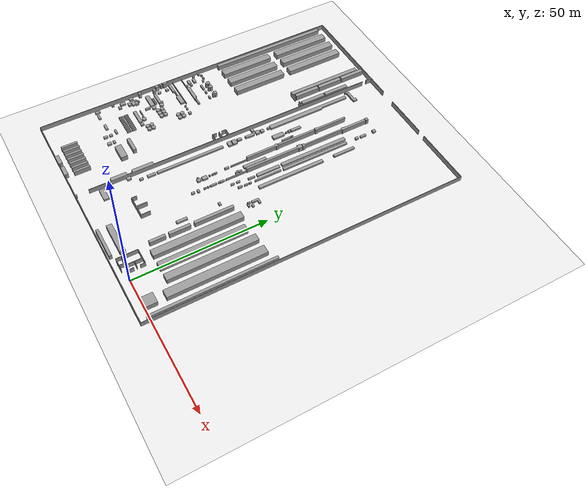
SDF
<sdf version="1.6">
 <world name="default">
  <light name="sun" type="directional">
   <pose>0 0 10 0 -0 0</pose>
   <diffuse>0.7 0.7 0.7 1</diffuse>
   <specular>0.2 0.2 0.2 1</specular>
   <attenuation>
    <range>1000</range>
    <constant>0.9</constant>
    <linear>0.01</linear>
    <quadratic>0.001</quadratic>
   </attenuation>
   <direction>-0.5 0.1 -0.9</direction>
  </light>
  <spherical_coordinates>
   <surface_model>EARTH_WGS84</surface_model>
   <latitude_deg>39.551549</latitude_deg>
   <longitude_deg>-0.468086</longitude_deg>
   <elevation>0</elevation>
   <heading_deg>0</heading_deg>
  </spherical_coordinates>
  <model name="ground_plane">
   <static>1</static>
   <link name="link">
    <collision name="collision">
     <pose>-30 60 0 0 -0 0</pose>
     <geometry><plane><normal>0 0 1</normal><size>100 130</size></plane></geometry>
     <surface>
      <contact><collide_bitmask>65535</collide_bitmask></contact>
      <friction><ode><mu>100</mu><mu2>50</mu2></ode></friction>
     </surface>
    </collision>
    <visual name="visual">
     <pose>-30 60 0 0 -0 0</pose>
     <cast_shadows>0</cast_shadows>
     <geometry><plane><normal>0 0 1</normal><size>100 130</size></plane></geometry>
     <material>
      <script><uri>file://media/materials/scripts/gazebo.material</uri><name>Gazebo/White</name></script>
      <ambient>0.95 0.95 0.95 1</ambient>
      <diffuse>0.95 0.95 0.95 1</diffuse>
      <specular>0.01 0.01 0.01 1</specular>
      <emissive>0 0 0 1</emissive>
     </material>
    </visual>
   </link>
  </model>
  <gravity>0 0 -9.8</gravity>
  <magnetic_field>6e-06 2.3e-05 -4.2e-05</magnetic_field>
  <atmosphere type="adiabatic"/>
  <physics name="default_physics" default="0" type="ode">
   <max_step_size>0.004</max_step_size>
   <real_time_factor>1</real_time_factor>
   <real_time_update_rate>250</real_time_update_rate>
  </physics>
  <scene><ambient>0.4 0.4 0.4 1</ambient><background>0.7 0.7 0.7 1</background><shadows>1</shadows></scene>
  <audio><device>default</device></audio>
  <model name="emka_factory">
   <link name="link_1">
    <inertial>
     <mass>1</mass>
     <inertia>
      <ixx>0.166667</ixx>
      <ixy>0</ixy>
      <ixz>0</ixz>
      <iyy>0.166667</iyy>
      <iyz>0</iyz>
      <izz>0.166667</izz>
     </inertia>
    </inertial>
    <pose>-4.7e-05 -2e-06 0 1.57 -0 1.57</pose>
    <visual name="visual">
     <geometry><mesh><uri>model://emka_factory/meshes/emka_factory.stl</uri><scale>1 1 1</scale></mesh></geometry>
     <material>
      <lighting>1</lighting>
      <script><uri>file://media/materials/scripts/gazebo.material</uri><name>Gazebo/Grey</name></script>
      <shader type="vertex"><normal_map>__default__</normal_map></shader>
     </material>
    </visual>
    <collision name="collision">
     <geometry><mesh><uri>model://emka_factory/meshes/emka_factory.stl</uri><scale>1 1 1</scale></mesh></geometry>
     <surface>
      <friction>
       <ode><mu>1</mu><mu2>1</mu2><fdir1>0 0 0</fdir1><slip1>0</slip1><slip2>0</slip2></ode>
       <torsional>
        <coefficient>1</coefficient>
        <patch_radius>0</patch_radius>
        <surface_radius>0</surface_radius>
        <use_patch_radius>1</use_patch_radius>
        <ode><slip>0</slip></ode>
       </torsional>
      </friction>
      <bounce><restitution_coefficient>0</restitution_coefficient><threshold>1e+06</threshold></bounce>
      <contact>
       <collide_without_contact>0</collide_without_contact>
       <collide_without_contact_bitmask>1</collide_without_contact_bitmask>
       <collide_bitmask>1</collide_bitmask>
       <ode>
        <soft_cfm>0</soft_cfm>
        <soft_erp>0.2</soft_erp>
        <kp>1e+13</kp>
        <kd>1</kd>
        <max_vel>0.01</max_vel>
        <min_depth>0</min_depth>
       </ode>
       <bullet>
        <split_impulse>1</split_impulse>
        <split_impulse_penetration_threshold>-0.01</split_impulse_penetration_threshold>
        <soft_cfm>0</soft_cfm>
        <soft_erp>0.2</soft_erp>
        <kp>1e+13</kp>
        <kd>1</kd>
       </bullet>
      </contact>
     </surface>
    </collision>
   </link>
   <static>1</static>
   <pose>16.9131 -5.62919 0 0 -0 0</pose>
  </model>
 </world>
</sdf>
